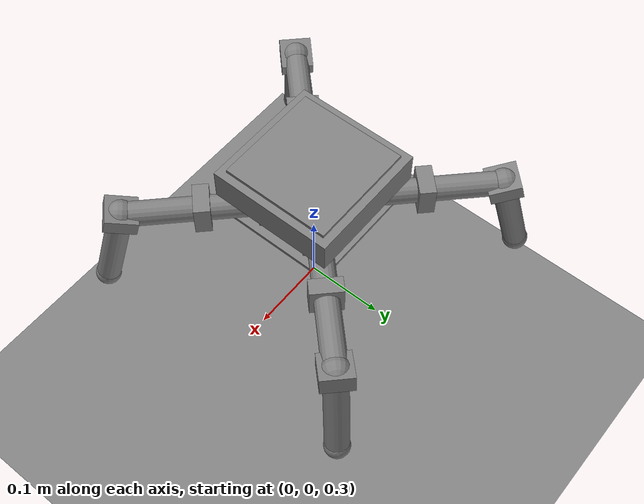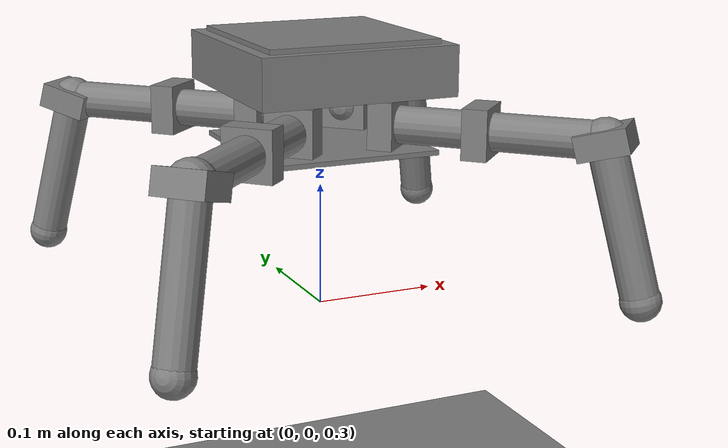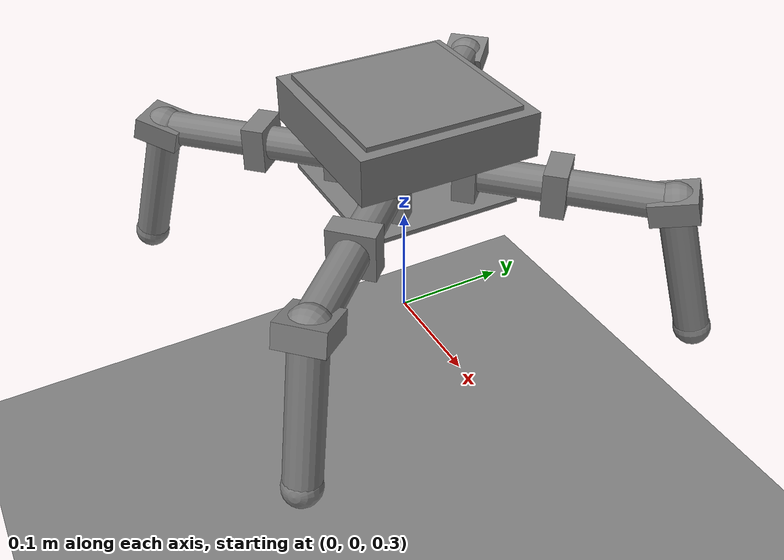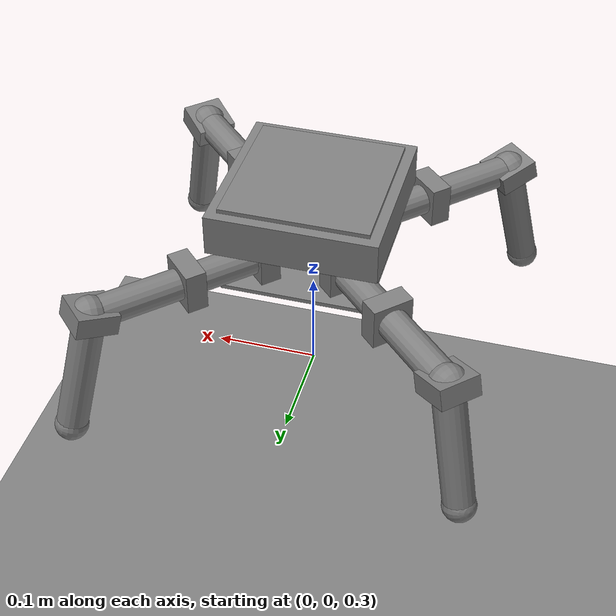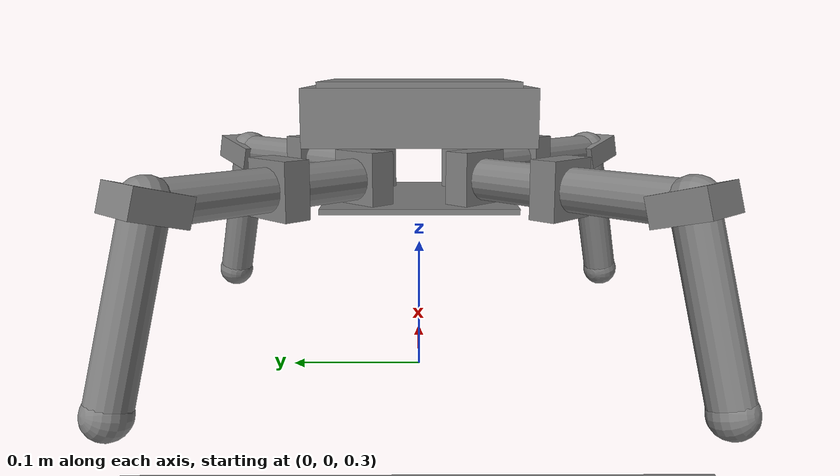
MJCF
<mujoco model="robot">
    <compiler angle="radian"/>
    <option timestep="0.002" gravity="0 0 -9.81" integrator="implicitfast"/>
    <default>
        <joint damping="0.18" armature="0.005" frictionloss="0.05"/>
        <geom friction="0.8 0.005 0.0001" condim="3"/>
    </default>
    <worldbody>
        <geom name="floor" type="plane" size="0 0 0.05" friction="0.8 0.005 0.0001"/>
        <body name="base" pos="0 0 0.5">
            <freejoint/>
            <geom name="base_geom" type="box" size="0.08 0.08 0.020" mass="0.55"/>
            <site name="imu_site" pos="0 0 0" size="0.005"/>
            <geom name="belly_ball" type = "box" pos = "0 0 -0.065" size="0.07 0.07 0.002"/>
            <geom name="head_ball" type = "box" pos = "0 0 0.021" size = "0.07 0.07 0.003"/>
            <body name="upper_leg_1" pos="0.04 0.04 -0.045" euler = "0 0 -0.7854">
                <joint name="hip_1" type="hinge" axis="0 0 1" range="-1.6 1.6"/>
                <geom type="box" size="0.02 0.01 0.02" mass="0.068" contype="0" conaffinity="0"/>
                <geom name="upper_leg_1_geom" type="capsule" fromto="0 0 0 0 0.075 0" size="0.015" density="1250"/>
                <body name="lower_leg_1" pos="0 0.075 0">
                    <joint name="knee_1" type="hinge" axis="1 0 0" range="-1.6 1.6"/>
                    <geom name="lower_leg_1_geom" type="capsule" fromto="0 0 0 0 0.095 0" size="0.015" density="1250"/>
                    <geom type="box" size="0.02 0.01 0.02" mass="0.068" contype="0" conaffinity="0"/>
                    <body name="foot_1" pos="0 0.095 0" euler = "-1.309 0 0">
                        <joint name="ankle_1" type="hinge" axis="1 0 0" range="-1.6 1.6"/>
                        <geom name="foot_1_geom" type="capsule" fromto="0 0 0 0 0.125 0" size="0.015" density="1250"/>
                        <geom type="box" size="0.02 0.01 0.02" mass="0.068" contype="0" conaffinity="0"/>
                        <geom name="knee_box_1" type = "sphere" size = "0.018" mass = "0.001"/>
                        <geom name="pad1" type="sphere" size="0.016" pos="0 0.125 0" mass="0.005"
                            friction="1.0 0.01 0.0001" condim="3"/>
                        <site name="foot_1_site" pos="0 0.125 0" size="0.016"/>
                    </body>
                </body>
            </body>
            <body name="upper_leg_2" pos="0.04 -0.04 -0.045" euler = "0 0 -2.3562">
                <joint name="hip_2" type="hinge" axis="0 0 1" range="-1.6 1.6"/>
                <geom name="upper_leg_2_geom" type="capsule" fromto="0 0 0 0 0.075 0" size="0.015" density="1250"/>
                <geom type="box" size="0.02 0.01 0.02" mass="0.068" contype="0" conaffinity="0"/>
                <body name="lower_leg_2" pos="0 0.075 0">
                    <joint name="knee_2" type="hinge" axis="1 0 0" range="-1.6 1.6"/>
                    <geom name="lower_leg_2_geom" type="capsule" fromto="0 0 0 0 0.095 0" size="0.015" density="1250"/>
                    <geom type="box" size="0.02 0.01 0.02" mass="0.068" contype="0" conaffinity="0"/>
                    <body name="foot_2" pos="0 0.095 0" euler = "-1.309 0 0">
                        <joint name="ankle_2" type="hinge" axis="1 0 0" range="-1.6 1.6"/>
                        <geom name="foot_2_geom" type="capsule" fromto="0 0 0 0 0.125 0" size="0.015" density="1250"/>
                        <geom type="box" size="0.02 0.01 0.02" mass="0.068" contype="0" conaffinity="0"/>
                        <geom name="knee_box_2" type = "sphere" size = "0.018" mass = "0.001"/>
                        <geom name="pad2" type="sphere" size="0.016" pos="0 0.125 0" mass="0.005"
                            friction="1.0 0.01 0.0001" condim="3"/>
                        <site name="foot_2_site" pos="0 0.125 0" size="0.016"/>
                    </body>
                </body>
            </body>
            <body name="upper_leg_3" pos="-0.04 -0.04 -0.045" euler = "0 0 2.3562">
                <joint name="hip_3" type="hinge" axis="0 0 1" range="-1.6 1.6"/>
                <geom name="upper_leg_3_geom" type="capsule" fromto="0 0 0 0 0.075 0" size="0.015" density="1250"/>
                <geom type="box" size="0.02 0.01 0.02" mass="0.068" contype="0" conaffinity="0"/>
                <body name="lower_leg_3" pos="0 0.075 0">
                    <joint name="knee_3" type="hinge" axis="1 0 0" range="-1.6 1.6"/>
                    <geom name="lower_leg_3_geom" type="capsule" fromto="0 0 0 0 0.095 0" size="0.015" density="1250"/>
                    <geom type="box" size="0.02 0.01 0.02" mass="0.068" contype="0" conaffinity="0"/>
                    <body name="foot_3" pos="0 0.095 0" euler = "-1.309 0 0">
                        <joint name="ankle_3" type="hinge" axis="1 0 0" range="-1.6 1.6"/>
                        <geom name="foot_3_geom" type="capsule" fromto="0 0 0 0 0.125 0" size="0.015" density="1250"/>
                        <geom type="box" size="0.02 0.01 0.02" mass="0.068" contype="0" conaffinity="0"/>
                        <geom name="knee_box_3" type = "sphere" size = "0.018" mass = "0.001"/>
                        <geom name="pad3" type="sphere" size="0.016" pos="0 0.125 0" mass="0.005"
                            friction="1.0 0.01 0.0001" condim="3"/>
                        <site name="foot_3_site" pos="0 0.125 0" size="0.016"/>
                    </body>
                </body>
            </body>
            <body name="upper_leg_4" pos="-0.04 0.04 -0.045" euler = "0 0 0.7854">
                <joint name="hip_4" type="hinge" axis="0 0 1" range="-1.6 1.6"/>
                <geom name="upper_leg_4_geom" type="capsule" fromto="0 0 0 0 0.075 0" size="0.015" density="1250"/>
                <geom type="box" size="0.02 0.01 0.02" mass="0.068" contype="0" conaffinity="0"/>
                <body name="lower_leg_4" pos="0 0.075 0">
                    <joint name="knee_4" type="hinge" axis="1 0 0" range="-1.6 1.6"/>
                    <geom name="lower_leg_4_geom" type="capsule" fromto="0 0 0 0 0.095 0" size="0.015" density="1250"/>
                    <geom type="box" size="0.02 0.01 0.02" mass="0.068" contype="0" conaffinity="0"/>
                    <body name="foot_4" pos="0 0.095 0" euler = "-1.309 0 0">
                        <joint name="ankle_4" type="hinge" axis="1 0 0" range="-1.6 1.6"/>
                        <geom name="foot_4_geom" type="capsule" fromto="0 0 0 0 0.125 0" size="0.015" density="1250"/>
                        <geom type="box" size="0.02 0.01 0.02" mass="0.068" contype="0" conaffinity="0"/>
                        <geom name="knee_box_4" type = "sphere" size = "0.018" mass = "0.001"/>
                        <geom name="pad4" type="sphere" size="0.016" pos="0 0.125 0" mass="0.005"
                            friction="1.0 0.01 0.0001" condim="3"/>
                        <site name="foot_4_site" pos="0 0.125 0" size="0.016"/>
                    </body>
                </body>
            </body>
        </body>
    </worldbody>
    <keyframe>
        <key name="stand" qpos="0 0 0.172  1 0 0 0  0 .6 -1.1  0 .6 -1.1  0 .6 -1.1  0 .6 -1.1"
             ctrl="0 .6 -1.1  0 .6 -1.1  0 .6 -1.1  0 .6 -1.1"/>
    </keyframe>
    <actuator>
        <position name="hip_1_servo"  joint="hip_1" kp="40" kv="1" forcerange="-1.57 1.57" ctrlrange="-0.69 0.69"/>
        <position name="knee_1_servo"  joint="knee_1" kp="40" kv="1" forcerange="-1.57 1.57" ctrlrange="-1.5 1.5"/>
        <position name="ankle_1_servo"  joint="ankle_1" kp="40" kv="1" forcerange="-1.57 1.57" ctrlrange="-0.845 0.845"/>
        <position name="hip_2_servo"  joint="hip_2" kp="40" kv="1" forcerange="-1.57 1.57" ctrlrange="-0.69 0.69"/>
        <position name="knee_2_servo"  joint="knee_2" kp="40" kv="1" forcerange="-1.57 1.57" ctrlrange="-1.5 1.5"/>
        <position name="ankle_2_servo"  joint="ankle_2" kp="40" kv="1" forcerange="-1.57 1.57" ctrlrange="-0.845 0.845"/>
        <position name="hip_3_servo"  joint="hip_3" kp="40" kv="1" forcerange="-1.57 1.57" ctrlrange="-0.69 0.69"/>
        <position name="knee_3_servo"  joint="knee_3" kp="40" kv="1" forcerange="-1.57 1.57" ctrlrange="-1.5 1.5"/>
        <position name="ankle_3_servo"  joint="ankle_3" kp="40" kv="1" forcerange="-1.57 1.57" ctrlrange="-0.845 0.845"/>
        <position name="hip_4_servo"  joint="hip_4" kp="40" kv="1" forcerange="-1.57 1.57" ctrlrange="-0.69 0.69"/>
        <position name="knee_4_servo"  joint="knee_4" kp="40" kv="1" forcerange="-1.57 1.57" ctrlrange="-1.5 1.5"/>
        <position name="ankle_4_servo"  joint="ankle_4" kp="40" kv="1" forcerange="-1.57 1.57" ctrlrange="-0.845 0.845"/>
    </actuator>
    <sensor>
        <jointpos name="hip_1_pos" joint="hip_1"/>
        <jointpos name="knee_1_pos" joint="knee_1"/>
        <jointpos name="ankle_1_pos" joint="ankle_1"/>
        <jointpos name="hip_2_pos" joint="hip_2"/>
        <jointpos name="knee_2_pos" joint="knee_2"/>
        <jointpos name="ankle_2_pos" joint="ankle_2"/>
        <jointpos name="hip_3_pos" joint="hip_3"/>
        <jointpos name="knee_3_pos" joint="knee_3"/>
        <jointpos name="ankle_3_pos" joint="ankle_3"/>
        <jointpos name="hip_4_pos" joint="hip_4"/>
        <jointpos name="knee_4_pos" joint="knee_4"/>
        <jointpos name="ankle_4_pos" joint="ankle_4"/>

        <jointvel name="hip_1_vel" joint="hip_1"/>
        <jointvel name="knee_1_vel" joint="knee_1"/>
        <jointvel name="ankle_1_vel" joint="ankle_1"/>
        <jointvel name="hip_2_vel" joint="hip_2"/>
        <jointvel name="knee_2_vel" joint="knee_2"/>
        <jointvel name="ankle_2_vel" joint="ankle_2"/>
        <jointvel name="hip_3_vel" joint="hip_3"/>
        <jointvel name="knee_3_vel" joint="knee_3"/>
        <jointvel name="ankle_3_vel" joint="ankle_3"/>
        <jointvel name="hip_4_vel" joint="hip_4"/>
        <jointvel name="knee_4_vel" joint="knee_4"/>
        <jointvel name="ankle_4_vel" joint="ankle_4"/>

        <velocimeter name="base_linvel" site="imu_site"/>
        <accelerometer name="imu_acc" site="imu_site"/>
        <gyro name="imu_gyro" site="imu_site"/>
        <framequat name="imu_quat" objtype="site" objname="imu_site"/>

        <contact name = "belly_touch" geom1 = "belly_ball"/>
        <contact name= "head_touch" geom1 = "head_ball" geom2 = "floor"/>
        <contact name= "knee1_touch" geom1 = "knee_box_1" geom2 = "floor"/>
        <contact name= "knee2_touch" geom1 = "knee_box_2" geom2 = "floor"/>
        <contact name= "knee3_touch" geom1 = "knee_box_3" geom2 = "floor"/>
        <contact name= "knee4_touch" geom1 = "knee_box_4" geom2 = "floor"/>
        <touch name="foot_1_touch" site="foot_1_site"/>
        <touch name="foot_2_touch" site="foot_2_site"/>
        <touch name="foot_3_touch" site="foot_3_site"/>
        <touch name="foot_4_touch" site="foot_4_site"/>
    </sensor>
</mujoco>
